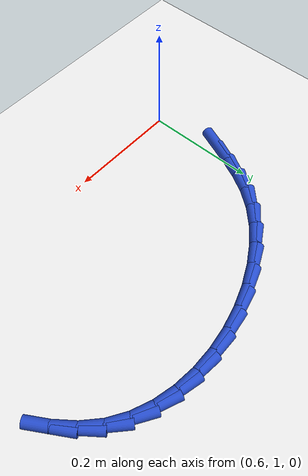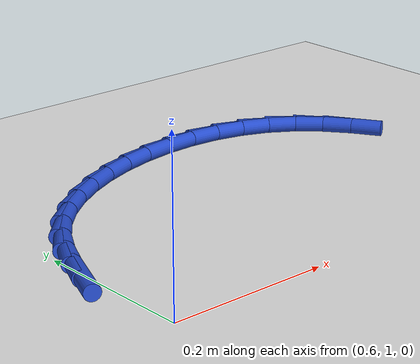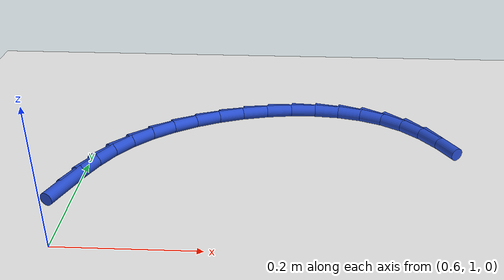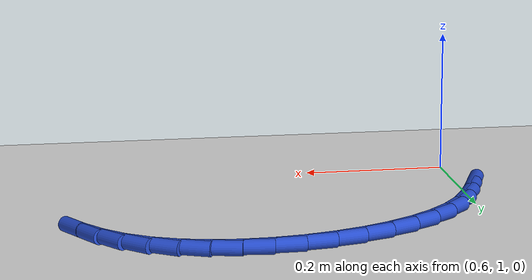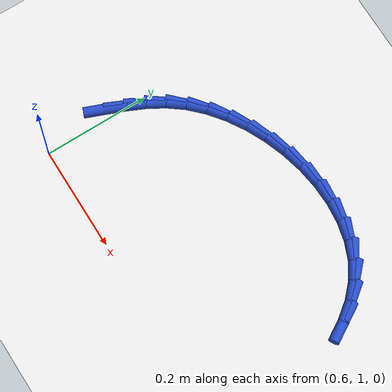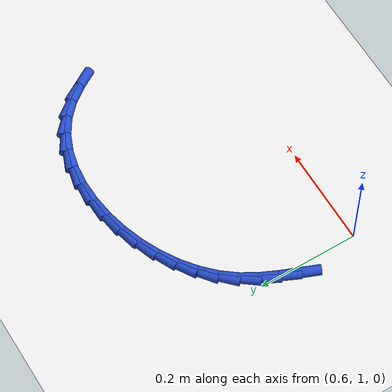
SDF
<sdf version="1.6">
 <world name="default">
  <model name="ground_plane">
   <static>1</static>
   <link name="link">
    <collision name="collision">
     <geometry><plane><normal>0 0 1</normal><size>100 100</size></plane></geometry>
     <surface><friction><ode><mu>100</mu><mu2>50</mu2></ode></friction></surface>
    </collision>
    <visual name="visual">
     <cast_shadows>0</cast_shadows>
     <geometry><plane><normal>0 0 1</normal><size>100 100</size></plane></geometry>
     <material>
      <script><uri>file://media/materials/scripts/gazebo.material</uri><name>Gazebo/WhiteGlow</name></script>
     </material>
    </visual>
   </link>
  </model>
  <model name="line">
   <link name="link_36">
    <pose>0.5844847817057239 1.1283447963974718 0.01 0 1.57 1.190123981029735</pose>
    <collision name="collision">
     <geometry><cylinder><radius>0.01</radius><length>0.08</length></cylinder></geometry>
    </collision>
    <visual name="visual">
     <material>
      <script><name>Gazebo/Blue</name><uri>file://media/materials/scripts/gazebo.material</uri></script>
     </material>
     <geometry><cylinder><radius>0.01</radius><length>0.08</length></cylinder></geometry>
    </visual>
   </link>
   <link name="link_37">
    <pose>0.5980562294849665 1.1622570924652948 0.01 0 1.57 1.1389958916644605</pose>
    <collision name="collision">
     <geometry><cylinder><radius>0.01</radius><length>0.08</length></cylinder></geometry>
    </collision>
    <visual name="visual">
     <material>
      <script><name>Gazebo/Blue</name><uri>file://media/materials/scripts/gazebo.material</uri></script>
     </material>
     <geometry><cylinder><radius>0.01</radius><length>0.08</length></cylinder></geometry>
    </visual>
   </link>
   <link name="link_38">
    <pose>0.6133655395575996 1.195480280794916 0.01 0 1.57 1.0484971937694696</pose>
    <collision name="collision">
     <geometry><cylinder><radius>0.01</radius><length>0.08</length></cylinder></geometry>
    </collision>
    <visual name="visual">
     <material>
      <script><name>Gazebo/Blue</name><uri>file://media/materials/scripts/gazebo.material</uri></script>
     </material>
     <geometry><cylinder><radius>0.01</radius><length>0.08</length></cylinder></geometry>
    </visual>
   </link>
   <link name="link_39">
    <pose>0.6316906581742908 1.2273157966933503 0.01 0 1.57 0.921144690310347</pose>
    <collision name="collision">
     <geometry><cylinder><radius>0.01</radius><length>0.08</length></cylinder></geometry>
    </collision>
    <visual name="visual">
     <material>
      <script><name>Gazebo/Blue</name><uri>file://media/materials/scripts/gazebo.material</uri></script>
     </material>
     <geometry><cylinder><radius>0.01</radius><length>0.08</length></cylinder></geometry>
    </visual>
   </link>
   <link name="link_40">
    <pose>0.6542925485223795 1.2570686378772085 0.01 0 1.57 0.7817355829819229</pose>
    <collision name="collision">
     <geometry><cylinder><radius>0.01</radius><length>0.08</length></cylinder></geometry>
    </collision>
    <visual name="visual">
     <material>
      <script><name>Gazebo/Blue</name><uri>file://media/materials/scripts/gazebo.material</uri></script>
     </material>
     <geometry><cylinder><radius>0.01</radius><length>0.08</length></cylinder></geometry>
    </visual>
   </link>
   <link name="link_41">
    <pose>0.6816345739705377 1.2842111085844885 0.01 0 1.57 0.6570782064253526</pose>
    <collision name="collision">
     <geometry><cylinder><radius>0.01</radius><length>0.08</length></cylinder></geometry>
    </collision>
    <visual name="visual">
     <material>
      <script><name>Gazebo/Blue</name><uri>file://media/materials/scripts/gazebo.material</uri></script>
     </material>
     <geometry><cylinder><radius>0.01</radius><length>0.08</length></cylinder></geometry>
    </visual>
   </link>
   <link name="link_42">
    <pose>0.7130566607372467 1.3084511680235122 0.01 0 1.57 0.544825665864811</pose>
    <collision name="collision">
     <geometry><cylinder><radius>0.01</radius><length>0.08</length></cylinder></geometry>
    </collision>
    <visual name="visual">
     <material>
      <script><name>Gazebo/Blue</name><uri>file://media/materials/scripts/gazebo.material</uri></script>
     </material>
     <geometry><cylinder><radius>0.01</radius><length>0.08</length></cylinder></geometry>
    </visual>
   </link>
   <link name="link_43">
    <pose>0.7478141780476387 1.3295145122877952 0.01 0 1.57 0.4406455929869234</pose>
    <collision name="collision">
     <geometry><cylinder><radius>0.01</radius><length>0.08</length></cylinder></geometry>
    </collision>
    <visual name="visual">
     <material>
      <script><name>Gazebo/Blue</name><uri>file://media/materials/scripts/gazebo.material</uri></script>
     </material>
     <geometry><cylinder><radius>0.01</radius><length>0.08</length></cylinder></geometry>
    </visual>
   </link>
   <link name="link_44">
    <pose>0.7851624951268471 1.3471268374708545 0.01 0 1.57 0.3405093780962412</pose>
    <collision name="collision">
     <geometry><cylinder><radius>0.01</radius><length>0.08</length></cylinder></geometry>
    </collision>
    <visual name="visual">
     <material>
      <script><name>Gazebo/Blue</name><uri>file://media/materials/scripts/gazebo.material</uri></script>
     </material>
     <geometry><cylinder><radius>0.01</radius><length>0.08</length></cylinder></geometry>
    </visual>
   </link>
   <link name="link_45">
    <pose>0.8243569812000046 1.3610138396662066 0.01 0 1.57 0.24061488266578748</pose>
    <collision name="collision">
     <geometry><cylinder><radius>0.01</radius><length>0.08</length></cylinder></geometry>
    </collision>
    <visual name="visual">
     <material>
      <script><name>Gazebo/Blue</name><uri>file://media/materials/scripts/gazebo.material</uri></script>
     </material>
     <geometry><cylinder><radius>0.01</radius><length>0.08</length></cylinder></geometry>
    </visual>
   </link>
   <link name="link_46">
    <pose>0.8646530054922443 1.370901214967368 0.01 0 1.57 0.13721447231933942</pose>
    <collision name="collision">
     <geometry><cylinder><radius>0.01</radius><length>0.08</length></cylinder></geometry>
    </collision>
    <visual name="visual">
     <material>
      <script><name>Gazebo/Blue</name><uri>file://media/materials/scripts/gazebo.material</uri></script>
     </material>
     <geometry><cylinder><radius>0.01</radius><length>0.08</length></cylinder></geometry>
    </visual>
   </link>
   <link name="link_47">
    <pose>0.9053059372286996 1.3765146594678557 0.01 0 1.57 0.026448674699358313</pose>
    <collision name="collision">
     <geometry><cylinder><radius>0.01</radius><length>0.08</length></cylinder></geometry>
    </collision>
    <visual name="visual">
     <material>
      <script><name>Gazebo/Blue</name><uri>file://media/materials/scripts/gazebo.material</uri></script>
     </material>
     <geometry><cylinder><radius>0.01</radius><length>0.08</length></cylinder></geometry>
    </visual>
   </link>
   <link name="link_48">
    <pose>0.9455711456345031 1.3775798692611856 0.01 0 1.57 -0.0957212625487064</pose>
    <collision name="collision">
     <geometry><cylinder><radius>0.01</radius><length>0.08</length></cylinder></geometry>
    </collision>
    <visual name="visual">
     <material>
      <script><name>Gazebo/Blue</name><uri>file://media/materials/scripts/gazebo.material</uri></script>
     </material>
     <geometry><cylinder><radius>0.01</radius><length>0.08</length></cylinder></geometry>
    </visual>
   </link>
   <link name="link_49">
    <pose>0.984703999934788 1.3738225404408748 0.01 0 1.57 -0.2333297636257535</pose>
    <collision name="collision">
     <geometry><cylinder><radius>0.01</radius><length>0.08</length></cylinder></geometry>
    </collision>
    <visual name="visual">
     <material>
      <script><name>Gazebo/Blue</name><uri>file://media/materials/scripts/gazebo.material</uri></script>
     </material>
     <geometry><cylinder><radius>0.01</radius><length>0.08</length></cylinder></geometry>
    </visual>
   </link>
   <link name="link_50">
    <pose>1.0219598693546872 1.3649683691004397 0.01 0 1.57 -0.3897217880723271</pose>
    <collision name="collision">
     <geometry><cylinder><radius>0.01</radius><length>0.08</length></cylinder></geometry>
    </collision>
    <visual name="visual">
     <material>
      <script><name>Gazebo/Blue</name><uri>file://media/materials/scripts/gazebo.material</uri></script>
     </material>
     <geometry><cylinder><radius>0.01</radius><length>0.08</length></cylinder></geometry>
    </visual>
   </link>
   <link name="link_51">
    <pose>1.0565941231193339 1.3507430513333967 0.01 0 1.57 -0.5661131193277678</pose>
    <collision name="collision">
     <geometry><cylinder><radius>0.01</radius><length>0.08</length></cylinder></geometry>
    </collision>
    <visual name="visual">
     <material>
      <script><name>Gazebo/Blue</name><uri>file://media/materials/scripts/gazebo.material</uri></script>
     </material>
     <geometry><cylinder><radius>0.01</radius><length>0.08</length></cylinder></geometry>
    </visual>
   </link>
   <link name="link_52">
    <pose>1.0878621304538605 1.3308722832332625 0.01 0 1.57 -0.7528160501932751</pose>
    <collision name="collision">
     <geometry><cylinder><radius>0.01</radius><length>0.08</length></cylinder></geometry>
    </collision>
    <visual name="visual">
     <material>
      <script><name>Gazebo/Blue</name><uri>file://media/materials/scripts/gazebo.material</uri></script>
     </material>
     <geometry><cylinder><radius>0.01</radius><length>0.08</length></cylinder></geometry>
    </visual>
   </link>
   <link name="link_53">
    <pose>1.1151919186763366 1.3052678155038229 0.01 0 1.57 -0.9076844818424412</pose>
    <collision name="collision">
     <geometry><cylinder><radius>0.01</radius><length>0.08</length></cylinder></geometry>
    </collision>
    <visual name="visual">
     <material>
      <script><name>Gazebo/Blue</name><uri>file://media/materials/scripts/gazebo.material</uri></script>
     </material>
     <geometry><cylinder><radius>0.01</radius><length>0.08</length></cylinder></geometry>
    </visual>
   </link>
   <link name="link_54">
    <pose>1.138949599904561 1.2748522695172781 0.01 0 1.57 -1.0198065131820249</pose>
    <collision name="collision">
     <geometry><cylinder><radius>0.01</radius><length>0.08</length></cylinder></geometry>
    </collision>
    <visual name="visual">
     <material>
      <script><name>Gazebo/Blue</name><uri>file://media/materials/scripts/gazebo.material</uri></script>
     </material>
     <geometry><cylinder><radius>0.01</radius><length>0.08</length></cylinder></geometry>
    </visual>
   </link>
  </model>
 </world>
</sdf>
